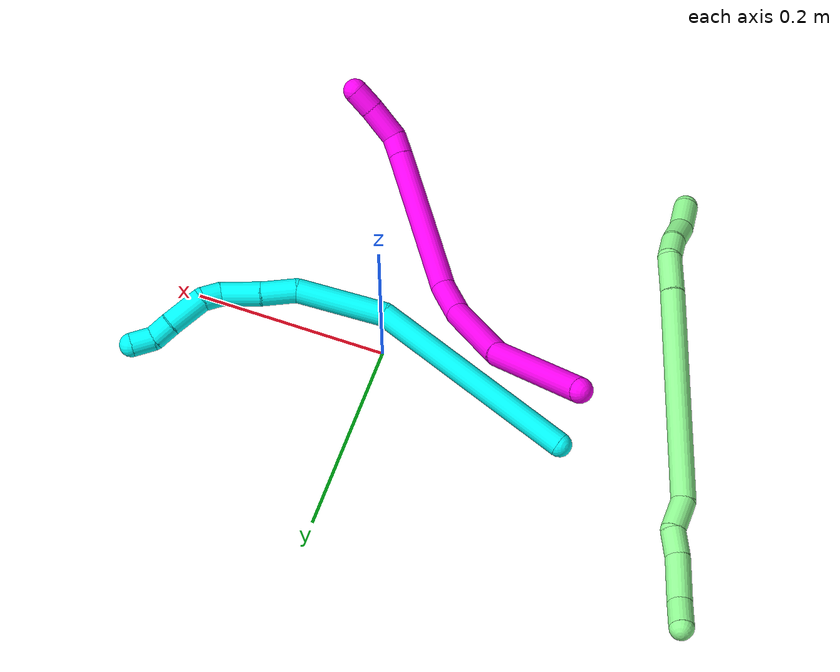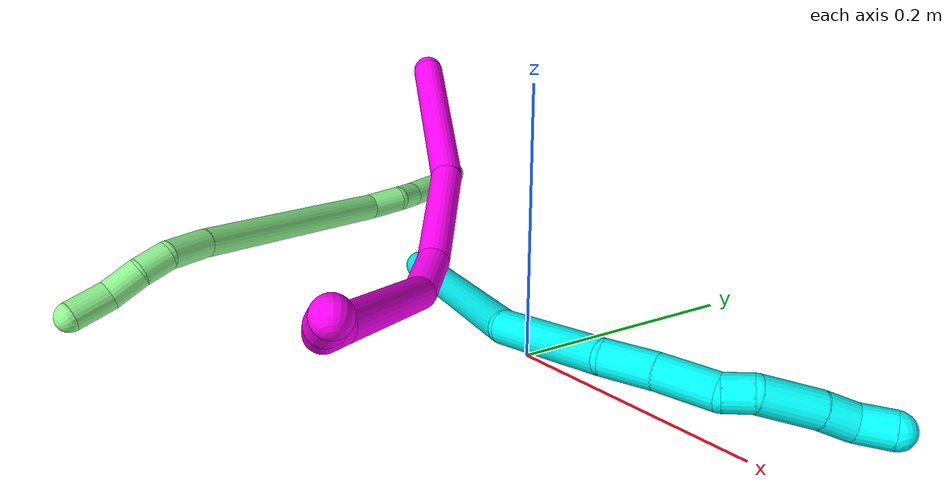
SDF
<sdf version="1.7">
 <world name="default">
  <model name="photoneo_s_sensor">
   <static>1</static>
   <pose>0 0 2 1.57079 1.57079 3.14159</pose>
   <link name="link">
    <inertial><mass>0.1</mass></inertial>
    <sensor name="sensor" type="depth">
     <update_rate>30</update_rate>
     <camera>
      <horizontal_fov>1.22</horizontal_fov>
      <image><width>1920</width><height>1200</height><format>B8G8R8</format></image>
      <clip><near>0.1</near><far>4</far></clip>
      <depth_camera><output>points</output></depth_camera>
     </camera>
     <plugin name="camera_plugin" filename="libgazebo_ros_depth_camera.so">
      <baseline>0.2</baseline>
      <alwaysOn>1</alwaysOn>
      <updateRate>0.0</updateRate>
      <cameraName>camera_ir</cameraName>
      <imageTopicName>/camera/color/image_raw</imageTopicName>
      <cameraInfoTopicName>/camera/color/camera_info</cameraInfoTopicName>
      <depthImageTopicName>/camera/depth/image_raw</depthImageTopicName>
      <depthImageCameraInfoTopicName>/camera/depth/camera_info</depthImageCameraInfoTopicName>
      <pointCloudTopicName>/camera/depth/points</pointCloudTopicName>
      <frameName>fr_optical</frameName>
      <pointCloudCutoff>0.1</pointCloudCutoff>
      <pointCloudCutoffMax>2.0</pointCloudCutoffMax>
      <distortionK1>0</distortionK1>
      <distortionK2>0</distortionK2>
      <distortionK3>0</distortionK3>
      <distortionT1>0</distortionT1>
      <distortionT2>0</distortionT2>
      <CxPrime>0</CxPrime>
      <Cx>0</Cx>
      <Cy>0</Cy>
      <focalLength>0</focalLength>
      <hackBaseline>0</hackBaseline>
     </plugin>
    </sensor>
   </link>
  </model>
  <model name="bin">
   <static>1</static>
   <link name="bottom">
    <collision name="collision-bottom">
     <pose>0 0 -0.01 0 -0 0</pose>
     <geometry><box><size>0.8 0.6 0.02</size></box></geometry>
     <surface>
      <friction><ode><mu>100</mu><mu2>100</mu2></ode></friction>
      <contact><collide_bitmask>65535</collide_bitmask></contact>
     </surface>
    </collision>
   </link>
   <link name="west_wall">
    <collision name="collision-west_wall">
     <pose>-0.41 0 0.1 0 -0 0</pose>
     <geometry><box><size>0.02 0.6 0.2</size></box></geometry>
     <surface>
      <friction><ode><mu>100</mu><mu2>100</mu2></ode></friction>
      <contact><collide_bitmask>65535</collide_bitmask></contact>
     </surface>
    </collision>
   </link>
   <link name="east_wall">
    <collision name="collision-east_wall">
     <pose>0.41 0 0.1 0 -0 0</pose>
     <geometry><box><size>0.02 0.6 0.2</size></box></geometry>
     <surface>
      <friction><ode><mu>100</mu><mu2>100</mu2></ode></friction>
      <contact><collide_bitmask>65535</collide_bitmask></contact>
     </surface>
    </collision>
   </link>
   <link name="south_wall">
    <collision name="collision-south_wall">
     <pose>0 -0.31 0.1 0 -0 0</pose>
     <geometry><box><size>0.8 0.02 0.2</size></box></geometry>
     <surface>
      <friction><ode><mu>100</mu><mu2>100</mu2></ode></friction>
      <contact><collide_bitmask>65535</collide_bitmask></contact>
     </surface>
    </collision>
   </link>
   <link name="north_wall">
    <collision name="collision-north_wall">
     <pose>0 0.31 0.1 0 -0 0</pose>
     <geometry><box><size>0.8 0.02 0.2</size></box></geometry>
     <surface>
      <friction><ode><mu>100</mu><mu2>100</mu2></ode></friction>
      <contact><collide_bitmask>65535</collide_bitmask></contact>
     </surface>
    </collision>
   </link>
  </model>
  <model name="3">
   <static>0</static>
   <link name="3">
    <collision name="collision-cylinder-e_1_1_4">
     <pose>0.060718 -0.030305 -0.088493 2.81165 0.575759 2.1172</pose>
     <geometry><cylinder><radius>0.0125</radius><length>0.223034</length></cylinder></geometry>
     <surface>
      <friction><ode><mu>1.16</mu><mu2>1.16</mu2><slip1>0</slip1><slip2>0</slip2></ode></friction>
      <contact><ode><kp>1e+06</kp><kd>1</kd><max_vel>0</max_vel><min_depth>0.001</min_depth></ode></contact>
     </surface>
    </collision>
    <visual name="visual-cylinder-e_1_1_4">
     <pose>0.060718 -0.030305 -0.088493 2.81165 0.575759 2.1172</pose>
     <geometry><cylinder><radius>0.0125</radius><length>0.223034</length></cylinder></geometry>
     <material><ambient>0.003922 1 0.996078 1</ambient></material>
    </visual>
    <collision name="collision-cylinder-e_2_4_5">
     <pose>0.152887 -0.056336 -0.210588 -3.01507 0.748348 -2.82172</pose>
     <geometry><cylinder><radius>0.0125</radius><length>0.092446</length></cylinder></geometry>
     <surface>
      <friction><ode><mu>1.16</mu><mu2>1.16</mu2><slip1>0</slip1><slip2>0</slip2></ode></friction>
      <contact><ode><kp>1e+06</kp><kd>1</kd><max_vel>0</max_vel><min_depth>0.001</min_depth></ode></contact>
     </surface>
    </collision>
    <visual name="visual-cylinder-e_2_4_5">
     <pose>0.152887 -0.056336 -0.210588 -3.01507 0.748348 -2.82172</pose>
     <geometry><cylinder><radius>0.0125</radius><length>0.092446</length></cylinder></geometry>
     <material><ambient>0.003922 1 0.996078 1</ambient></material>
    </visual>
    <collision name="collision-cylinder-e_3_5_6">
     <pose>0.196103 -0.043989 -0.255647 -2.52776 0.698287 -1.70899</pose>
     <geometry><cylinder><radius>0.0125</radius><length>0.036599</length></cylinder></geometry>
     <surface>
      <friction><ode><mu>1.16</mu><mu2>1.16</mu2><slip1>0</slip1><slip2>0</slip2></ode></friction>
      <contact><ode><kp>1e+06</kp><kd>1</kd><max_vel>0</max_vel><min_depth>0.001</min_depth></ode></contact>
     </surface>
    </collision>
    <visual name="visual-cylinder-e_3_5_6">
     <pose>0.196103 -0.043989 -0.255647 -2.52776 0.698287 -1.70899</pose>
     <geometry><cylinder><radius>0.0125</radius><length>0.036599</length></cylinder></geometry>
     <material><ambient>0.003922 1 0.996078 1</ambient></material>
    </visual>
    <collision name="collision-cylinder-e_4_6_7">
     <pose>0.220738 -0.028617 -0.281456 -2.67115 0.674369 -1.9423</pose>
     <geometry><cylinder><radius>0.0125</radius><length>0.041223</length></cylinder></geometry>
     <surface>
      <friction><ode><mu>1.16</mu><mu2>1.16</mu2><slip1>0</slip1><slip2>0</slip2></ode></friction>
      <contact><ode><kp>1e+06</kp><kd>1</kd><max_vel>0</max_vel><min_depth>0.001</min_depth></ode></contact>
     </surface>
    </collision>
    <visual name="visual-cylinder-e_4_6_7">
     <pose>0.220738 -0.028617 -0.281456 -2.67115 0.674369 -1.9423</pose>
     <geometry><cylinder><radius>0.0125</radius><length>0.041223</length></cylinder></geometry>
     <material><ambient>0.003922 1 0.996078 1</ambient></material>
    </visual>
    <collision name="collision-cylinder-e_5_7_8">
     <pose>0.240926 -0.015405 -0.299469 -2.12528 0.810694 -1.31296</pose>
     <geometry><cylinder><radius>0.0125</radius><length>0.020195</length></cylinder></geometry>
     <surface>
      <friction><ode><mu>1.16</mu><mu2>1.16</mu2><slip1>0</slip1><slip2>0</slip2></ode></friction>
      <contact><ode><kp>1e+06</kp><kd>1</kd><max_vel>0</max_vel><min_depth>0.001</min_depth></ode></contact>
     </surface>
    </collision>
    <visual name="visual-cylinder-e_5_7_8">
     <pose>0.240926 -0.015405 -0.299469 -2.12528 0.810694 -1.31296</pose>
     <geometry><cylinder><radius>0.0125</radius><length>0.020195</length></cylinder></geometry>
     <material><ambient>0.003922 1 0.996078 1</ambient></material>
    </visual>
    <collision name="collision-cylinder-e_6_8_9">
     <pose>0.256193 0.007893 -0.309852 -1.93968 0.403125 -0.579363</pose>
     <geometry><cylinder><radius>0.0125</radius><length>0.040522</length></cylinder></geometry>
     <surface>
      <friction><ode><mu>1.16</mu><mu2>1.16</mu2><slip1>0</slip1><slip2>0</slip2></ode></friction>
      <contact><ode><kp>1e+06</kp><kd>1</kd><max_vel>0</max_vel><min_depth>0.001</min_depth></ode></contact>
     </surface>
    </collision>
    <visual name="visual-cylinder-e_6_8_9">
     <pose>0.256193 0.007893 -0.309852 -1.93968 0.403125 -0.579363</pose>
     <geometry><cylinder><radius>0.0125</radius><length>0.040522</length></cylinder></geometry>
     <material><ambient>0.003922 1 0.996078 1</ambient></material>
    </visual>
    <collision name="collision-cylinder-e_7_9_10">
     <pose>0.267495 0.03511 -0.320878 -1.98351 0.302824 -0.45854</pose>
     <geometry><cylinder><radius>0.0125</radius><length>0.022495</length></cylinder></geometry>
     <surface>
      <friction><ode><mu>1.16</mu><mu2>1.16</mu2><slip1>0</slip1><slip2>0</slip2></ode></friction>
      <contact><ode><kp>1e+06</kp><kd>1</kd><max_vel>0</max_vel><min_depth>0.001</min_depth></ode></contact>
     </surface>
    </collision>
    <visual name="visual-cylinder-e_7_9_10">
     <pose>0.267495 0.03511 -0.320878 -1.98351 0.302824 -0.45854</pose>
     <geometry><cylinder><radius>0.0125</radius><length>0.022495</length></cylinder></geometry>
     <material><ambient>0.003922 1 0.996078 1</ambient></material>
    </visual>
    <collision name="collision-cylinder-e_8_10_2">
     <pose>0.278213 0.051981 -0.33103 -2.26403 0.677797 -1.28844</pose>
     <geometry><cylinder><radius>0.0125</radius><length>0.023487</length></cylinder></geometry>
     <surface>
      <friction><ode><mu>1.16</mu><mu2>1.16</mu2><slip1>0</slip1><slip2>0</slip2></ode></friction>
      <contact><ode><kp>1e+06</kp><kd>1</kd><max_vel>0</max_vel><min_depth>0.001</min_depth></ode></contact>
     </surface>
    </collision>
    <visual name="visual-cylinder-e_8_10_2">
     <pose>0.278213 0.051981 -0.33103 -2.26403 0.677797 -1.28844</pose>
     <geometry><cylinder><radius>0.0125</radius><length>0.023487</length></cylinder></geometry>
     <material><ambient>0.003922 1 0.996078 1</ambient></material>
    </visual>
    <collision name="collision-sphere-2">
     <pose>0.285577 0.059017 -0.336875 0 -0 0</pose>
     <geometry><sphere><radius>0.0125</radius></sphere></geometry>
     <surface>
      <friction><ode><mu>1.16</mu><mu2>1.16</mu2><slip1>0</slip1><slip2>0</slip2></ode></friction>
      <contact><ode><kp>1e+06</kp><kd>1</kd><max_vel>0</max_vel><min_depth>0.001</min_depth></ode></contact>
     </surface>
    </collision>
    <visual name="visual-sphere-2">
     <pose>0.285577 0.059017 -0.336875 0 -0 0</pose>
     <geometry><sphere><radius>0.0125</radius></sphere></geometry>
     <material><ambient>0.003922 1 0.996078 1</ambient></material>
    </visual>
    <collision name="collision-sphere-10">
     <pose>0.270849 0.044945 -0.325184 0 -0 0</pose>
     <geometry><sphere><radius>0.0125</radius></sphere></geometry>
     <surface>
      <friction><ode><mu>1.16</mu><mu2>1.16</mu2><slip1>0</slip1><slip2>0</slip2></ode></friction>
      <contact><ode><kp>1e+06</kp><kd>1</kd><max_vel>0</max_vel><min_depth>0.001</min_depth></ode></contact>
     </surface>
    </collision>
    <visual name="visual-sphere-10">
     <pose>0.270849 0.044945 -0.325184 0 -0 0</pose>
     <geometry><sphere><radius>0.0125</radius></sphere></geometry>
     <material><ambient>0.003922 1 0.996078 1</ambient></material>
    </visual>
    <collision name="collision-sphere-9">
     <pose>0.264141 0.025276 -0.316572 0 -0 0</pose>
     <geometry><sphere><radius>0.0125</radius></sphere></geometry>
     <surface>
      <friction><ode><mu>1.16</mu><mu2>1.16</mu2><slip1>0</slip1><slip2>0</slip2></ode></friction>
      <contact><ode><kp>1e+06</kp><kd>1</kd><max_vel>0</max_vel><min_depth>0.001</min_depth></ode></contact>
     </surface>
    </collision>
    <visual name="visual-sphere-9">
     <pose>0.264141 0.025276 -0.316572 0 -0 0</pose>
     <geometry><sphere><radius>0.0125</radius></sphere></geometry>
     <material><ambient>0.003922 1 0.996078 1</ambient></material>
    </visual>
    <collision name="collision-sphere-4">
     <pose>0.121436 -0.06061 -0.176986 0 -0 0</pose>
     <geometry><sphere><radius>0.0125</radius></sphere></geometry>
     <surface>
      <friction><ode><mu>1.16</mu><mu2>1.16</mu2><slip1>0</slip1><slip2>0</slip2></ode></friction>
      <contact><ode><kp>1e+06</kp><kd>1</kd><max_vel>0</max_vel><min_depth>0.001</min_depth></ode></contact>
     </surface>
    </collision>
    <visual name="visual-sphere-4">
     <pose>0.121436 -0.06061 -0.176986 0 -0 0</pose>
     <geometry><sphere><radius>0.0125</radius></sphere></geometry>
     <material><ambient>0.003922 1 0.996078 1</ambient></material>
    </visual>
    <collision name="collision-sphere-1">
     <geometry><sphere><radius>0.0125</radius></sphere></geometry>
     <surface>
      <friction><ode><mu>1.16</mu><mu2>1.16</mu2><slip1>0</slip1><slip2>0</slip2></ode></friction>
      <contact><ode><kp>1e+06</kp><kd>1</kd><max_vel>0</max_vel><min_depth>0.001</min_depth></ode></contact>
     </surface>
    </collision>
    <visual name="visual-sphere-1">
     <geometry><sphere><radius>0.0125</radius></sphere></geometry>
     <material><ambient>0.003922 1 0.996078 1</ambient></material>
    </visual>
    <collision name="collision-sphere-8">
     <pose>0.248245 -0.00949 -0.303132 0 -0 0</pose>
     <geometry><sphere><radius>0.0125</radius></sphere></geometry>
     <surface>
      <friction><ode><mu>1.16</mu><mu2>1.16</mu2><slip1>0</slip1><slip2>0</slip2></ode></friction>
      <contact><ode><kp>1e+06</kp><kd>1</kd><max_vel>0</max_vel><min_depth>0.001</min_depth></ode></contact>
     </surface>
    </collision>
    <visual name="visual-sphere-8">
     <pose>0.248245 -0.00949 -0.303132 0 -0 0</pose>
     <geometry><sphere><radius>0.0125</radius></sphere></geometry>
     <material><ambient>0.003922 1 0.996078 1</ambient></material>
    </visual>
    <collision name="collision-sphere-5">
     <pose>0.184338 -0.052062 -0.24419 0 -0 0</pose>
     <geometry><sphere><radius>0.0125</radius></sphere></geometry>
     <surface>
      <friction><ode><mu>1.16</mu><mu2>1.16</mu2><slip1>0</slip1><slip2>0</slip2></ode></friction>
      <contact><ode><kp>1e+06</kp><kd>1</kd><max_vel>0</max_vel><min_depth>0.001</min_depth></ode></contact>
     </surface>
    </collision>
    <visual name="visual-sphere-5">
     <pose>0.184338 -0.052062 -0.24419 0 -0 0</pose>
     <geometry><sphere><radius>0.0125</radius></sphere></geometry>
     <material><ambient>0.003922 1 0.996078 1</ambient></material>
    </visual>
    <collision name="collision-sphere-6">
     <pose>0.207868 -0.035915 -0.267105 0 -0 0</pose>
     <geometry><sphere><radius>0.0125</radius></sphere></geometry>
     <surface>
      <friction><ode><mu>1.16</mu><mu2>1.16</mu2><slip1>0</slip1><slip2>0</slip2></ode></friction>
      <contact><ode><kp>1e+06</kp><kd>1</kd><max_vel>0</max_vel><min_depth>0.001</min_depth></ode></contact>
     </surface>
    </collision>
    <visual name="visual-sphere-6">
     <pose>0.207868 -0.035915 -0.267105 0 -0 0</pose>
     <geometry><sphere><radius>0.0125</radius></sphere></geometry>
     <material><ambient>0.003922 1 0.996078 1</ambient></material>
    </visual>
    <collision name="collision-sphere-7">
     <pose>0.233608 -0.02132 -0.295806 0 -0 0</pose>
     <geometry><sphere><radius>0.0125</radius></sphere></geometry>
     <surface>
      <friction><ode><mu>1.16</mu><mu2>1.16</mu2><slip1>0</slip1><slip2>0</slip2></ode></friction>
      <contact><ode><kp>1e+06</kp><kd>1</kd><max_vel>0</max_vel><min_depth>0.001</min_depth></ode></contact>
     </surface>
    </collision>
    <visual name="visual-sphere-7">
     <pose>0.233608 -0.02132 -0.295806 0 -0 0</pose>
     <geometry><sphere><radius>0.0125</radius></sphere></geometry>
     <material><ambient>0.003922 1 0.996078 1</ambient></material>
    </visual>
    <inertial>
     <pose>0.143502 -0.025475 -0.18752 0 -0 0</pose>
     <mass>0.5</mass>
     <inertia>
      <ixx>0.000209</ixx>
      <ixy>0</ixy>
      <ixz>0</ixz>
      <iyy>0.001315</iyy>
      <iyz>0</iyz>
      <izz>-0.000363</izz>
     </inertia>
    </inertial>
   </link>
   <pose>-0.203324 0.042405 0.011485 -0.668118 -0.815249 0.463639</pose>
  </model>
  <model name="10">
   <static>0</static>
   <link name="10">
    <collision name="collision-cylinder-e_1_1_4">
     <pose>0.001151 0.000284 -0.065522 -3.13726 0.017563 -2.65785</pose>
     <geometry><cylinder><radius>0.0125</radius><length>0.131065</length></cylinder></geometry>
     <surface>
      <friction><ode><mu>1.16</mu><mu2>1.16</mu2><slip1>0</slip1><slip2>0</slip2></ode></friction>
      <contact><ode><kp>1e+06</kp><kd>1</kd><max_vel>0</max_vel><min_depth>0.001</min_depth></ode></contact>
     </surface>
    </collision>
    <visual name="visual-cylinder-e_1_1_4">
     <pose>0.001151 0.000284 -0.065522 -3.13726 0.017563 -2.65785</pose>
     <geometry><cylinder><radius>0.0125</radius><length>0.131065</length></cylinder></geometry>
     <material><ambient>1 0 0.964706 1</ambient></material>
    </visual>
    <collision name="collision-cylinder-e_2_4_5">
     <pose>0.004187 -0.010412 -0.176535 2.90476 0.040265 0.335299</pose>
     <geometry><cylinder><radius>0.0125</radius><length>0.093672</length></cylinder></geometry>
     <surface>
      <friction><ode><mu>1.16</mu><mu2>1.16</mu2><slip1>0</slip1><slip2>0</slip2></ode></friction>
      <contact><ode><kp>1e+06</kp><kd>1</kd><max_vel>0</max_vel><min_depth>0.001</min_depth></ode></contact>
     </surface>
    </collision>
    <visual name="visual-cylinder-e_2_4_5">
     <pose>0.004187 -0.010412 -0.176535 2.90476 0.040265 0.335299</pose>
     <geometry><cylinder><radius>0.0125</radius><length>0.093672</length></cylinder></geometry>
     <material><ambient>1 0 0.964706 1</ambient></material>
    </visual>
    <collision name="collision-cylinder-e_3_5_6">
     <pose>0.011076 -0.029305 -0.240924 2.74508 0.239521 1.07937</pose>
     <geometry><cylinder><radius>0.0125</radius><length>0.042178</length></cylinder></geometry>
     <surface>
      <friction><ode><mu>1.16</mu><mu2>1.16</mu2><slip1>0</slip1><slip2>0</slip2></ode></friction>
      <contact><ode><kp>1e+06</kp><kd>1</kd><max_vel>0</max_vel><min_depth>0.001</min_depth></ode></contact>
     </surface>
    </collision>
    <visual name="visual-cylinder-e_3_5_6">
     <pose>0.011076 -0.029305 -0.240924 2.74508 0.239521 1.07937</pose>
     <geometry><cylinder><radius>0.0125</radius><length>0.042178</length></cylinder></geometry>
     <material><ambient>1 0 0.964706 1</ambient></material>
    </visual>
    <collision name="collision-cylinder-e_4_6_7">
     <pose>0.061836 -0.073461 -0.306151 2.47772 0.661116 1.56632</pose>
     <geometry><cylinder><radius>0.0125</radius><length>0.149047</length></cylinder></geometry>
     <surface>
      <friction><ode><mu>1.16</mu><mu2>1.16</mu2><slip1>0</slip1><slip2>0</slip2></ode></friction>
      <contact><ode><kp>1e+06</kp><kd>1</kd><max_vel>0</max_vel><min_depth>0.001</min_depth></ode></contact>
     </surface>
    </collision>
    <visual name="visual-cylinder-e_4_6_7">
     <pose>0.061836 -0.073461 -0.306151 2.47772 0.661116 1.56632</pose>
     <geometry><cylinder><radius>0.0125</radius><length>0.149047</length></cylinder></geometry>
     <material><ambient>1 0 0.964706 1</ambient></material>
    </visual>
    <collision name="collision-cylinder-e_5_7_8">
     <pose>0.114544 -0.114869 -0.359408 2.50106 0.677398 1.63099</pose>
     <geometry><cylinder><radius>0.0125</radius><length>0.022179</length></cylinder></geometry>
     <surface>
      <friction><ode><mu>1.16</mu><mu2>1.16</mu2><slip1>0</slip1><slip2>0</slip2></ode></friction>
      <contact><ode><kp>1e+06</kp><kd>1</kd><max_vel>0</max_vel><min_depth>0.001</min_depth></ode></contact>
     </surface>
    </collision>
    <visual name="visual-cylinder-e_5_7_8">
     <pose>0.114544 -0.114869 -0.359408 2.50106 0.677398 1.63099</pose>
     <geometry><cylinder><radius>0.0125</radius><length>0.022179</length></cylinder></geometry>
     <material><ambient>1 0 0.964706 1</ambient></material>
    </visual>
    <collision name="collision-cylinder-e_6_8_9">
     <pose>0.137724 -0.121218 -0.375162 3.0082 1.06895 2.91686</pose>
     <geometry><cylinder><radius>0.0125</radius><length>0.037025</length></cylinder></geometry>
     <surface>
      <friction><ode><mu>1.16</mu><mu2>1.16</mu2><slip1>0</slip1><slip2>0</slip2></ode></friction>
      <contact><ode><kp>1e+06</kp><kd>1</kd><max_vel>0</max_vel><min_depth>0.001</min_depth></ode></contact>
     </surface>
    </collision>
    <visual name="visual-cylinder-e_6_8_9">
     <pose>0.137724 -0.121218 -0.375162 3.0082 1.06895 2.91686</pose>
     <geometry><cylinder><radius>0.0125</radius><length>0.037025</length></cylinder></geometry>
     <material><ambient>1 0 0.964706 1</ambient></material>
    </visual>
    <collision name="collision-cylinder-e_7_9_2">
     <pose>0.165239 -0.122049 -0.389156 -3.0734 1.14047 -3.03532</pose>
     <geometry><cylinder><radius>0.0125</radius><length>0.024834</length></cylinder></geometry>
     <surface>
      <friction><ode><mu>1.16</mu><mu2>1.16</mu2><slip1>0</slip1><slip2>0</slip2></ode></friction>
      <contact><ode><kp>1e+06</kp><kd>1</kd><max_vel>0</max_vel><min_depth>0.001</min_depth></ode></contact>
     </surface>
    </collision>
    <visual name="visual-cylinder-e_7_9_2">
     <pose>0.165239 -0.122049 -0.389156 -3.0734 1.14047 -3.03532</pose>
     <geometry><cylinder><radius>0.0125</radius><length>0.024834</length></cylinder></geometry>
     <material><ambient>1 0 0.964706 1</ambient></material>
    </visual>
    <collision name="collision-sphere-2">
     <pose>0.176524 -0.121696 -0.394324 0 -0 0</pose>
     <geometry><sphere><radius>0.0125</radius></sphere></geometry>
     <surface>
      <friction><ode><mu>1.16</mu><mu2>1.16</mu2><slip1>0</slip1><slip2>0</slip2></ode></friction>
      <contact><ode><kp>1e+06</kp><kd>1</kd><max_vel>0</max_vel><min_depth>0.001</min_depth></ode></contact>
     </surface>
    </collision>
    <visual name="visual-sphere-2">
     <pose>0.176524 -0.121696 -0.394324 0 -0 0</pose>
     <geometry><sphere><radius>0.0125</radius></sphere></geometry>
     <material><ambient>1 0 0.964706 1</ambient></material>
    </visual>
    <collision name="collision-sphere-9">
     <pose>0.153954 -0.122402 -0.383988 0 -0 0</pose>
     <geometry><sphere><radius>0.0125</radius></sphere></geometry>
     <surface>
      <friction><ode><mu>1.16</mu><mu2>1.16</mu2><slip1>0</slip1><slip2>0</slip2></ode></friction>
      <contact><ode><kp>1e+06</kp><kd>1</kd><max_vel>0</max_vel><min_depth>0.001</min_depth></ode></contact>
     </surface>
    </collision>
    <visual name="visual-sphere-9">
     <pose>0.153954 -0.122402 -0.383988 0 -0 0</pose>
     <geometry><sphere><radius>0.0125</radius></sphere></geometry>
     <material><ambient>1 0 0.964706 1</ambient></material>
    </visual>
    <collision name="collision-sphere-4">
     <pose>0.002302 0.000568 -0.131044 0 -0 0</pose>
     <geometry><sphere><radius>0.0125</radius></sphere></geometry>
     <surface>
      <friction><ode><mu>1.16</mu><mu2>1.16</mu2><slip1>0</slip1><slip2>0</slip2></ode></friction>
      <contact><ode><kp>1e+06</kp><kd>1</kd><max_vel>0</max_vel><min_depth>0.001</min_depth></ode></contact>
     </surface>
    </collision>
    <visual name="visual-sphere-4">
     <pose>0.002302 0.000568 -0.131044 0 -0 0</pose>
     <geometry><sphere><radius>0.0125</radius></sphere></geometry>
     <material><ambient>1 0 0.964706 1</ambient></material>
    </visual>
    <collision name="collision-sphere-1">
     <geometry><sphere><radius>0.0125</radius></sphere></geometry>
     <surface>
      <friction><ode><mu>1.16</mu><mu2>1.16</mu2><slip1>0</slip1><slip2>0</slip2></ode></friction>
      <contact><ode><kp>1e+06</kp><kd>1</kd><max_vel>0</max_vel><min_depth>0.001</min_depth></ode></contact>
     </surface>
    </collision>
    <visual name="visual-sphere-1">
     <geometry><sphere><radius>0.0125</radius></sphere></geometry>
     <material><ambient>1 0 0.964706 1</ambient></material>
    </visual>
    <collision name="collision-sphere-8">
     <pose>0.121494 -0.120033 -0.366336 0 -0 0</pose>
     <geometry><sphere><radius>0.0125</radius></sphere></geometry>
     <surface>
      <friction><ode><mu>1.16</mu><mu2>1.16</mu2><slip1>0</slip1><slip2>0</slip2></ode></friction>
      <contact><ode><kp>1e+06</kp><kd>1</kd><max_vel>0</max_vel><min_depth>0.001</min_depth></ode></contact>
     </surface>
    </collision>
    <visual name="visual-sphere-8">
     <pose>0.121494 -0.120033 -0.366336 0 -0 0</pose>
     <geometry><sphere><radius>0.0125</radius></sphere></geometry>
     <material><ambient>1 0 0.964706 1</ambient></material>
    </visual>
    <collision name="collision-sphere-5">
     <pose>0.006072 -0.021392 -0.222027 0 -0 0</pose>
     <geometry><sphere><radius>0.0125</radius></sphere></geometry>
     <surface>
      <friction><ode><mu>1.16</mu><mu2>1.16</mu2><slip1>0</slip1><slip2>0</slip2></ode></friction>
      <contact><ode><kp>1e+06</kp><kd>1</kd><max_vel>0</max_vel><min_depth>0.001</min_depth></ode></contact>
     </surface>
    </collision>
    <visual name="visual-sphere-5">
     <pose>0.006072 -0.021392 -0.222027 0 -0 0</pose>
     <geometry><sphere><radius>0.0125</radius></sphere></geometry>
     <material><ambient>1 0 0.964706 1</ambient></material>
    </visual>
    <collision name="collision-sphere-6">
     <pose>0.016079 -0.037217 -0.259822 0 -0 0</pose>
     <geometry><sphere><radius>0.0125</radius></sphere></geometry>
     <surface>
      <friction><ode><mu>1.16</mu><mu2>1.16</mu2><slip1>0</slip1><slip2>0</slip2></ode></friction>
      <contact><ode><kp>1e+06</kp><kd>1</kd><max_vel>0</max_vel><min_depth>0.001</min_depth></ode></contact>
     </surface>
    </collision>
    <visual name="visual-sphere-6">
     <pose>0.016079 -0.037217 -0.259822 0 -0 0</pose>
     <geometry><sphere><radius>0.0125</radius></sphere></geometry>
     <material><ambient>1 0 0.964706 1</ambient></material>
    </visual>
    <collision name="collision-sphere-7">
     <pose>0.107593 -0.109705 -0.352479 0 -0 0</pose>
     <geometry><sphere><radius>0.0125</radius></sphere></geometry>
     <surface>
      <friction><ode><mu>1.16</mu><mu2>1.16</mu2><slip1>0</slip1><slip2>0</slip2></ode></friction>
      <contact><ode><kp>1e+06</kp><kd>1</kd><max_vel>0</max_vel><min_depth>0.001</min_depth></ode></contact>
     </surface>
    </collision>
    <visual name="visual-sphere-7">
     <pose>0.107593 -0.109705 -0.352479 0 -0 0</pose>
     <geometry><sphere><radius>0.0125</radius></sphere></geometry>
     <material><ambient>1 0 0.964706 1</ambient></material>
    </visual>
    <inertial>
     <pose>0.04394 -0.04638 -0.224885 0 -0 0</pose>
     <mass>0.5</mass>
     <inertia>
      <ixx>7.7e-05</ixx>
      <ixy>0</ixy>
      <ixz>0</ixz>
      <iyy>0.000372</iyy>
      <iyz>0</iyz>
      <izz>-6.3e-05</izz>
     </inertia>
    </inertial>
   </link>
   <pose>-0.224088 0.065357 0.184571 -0.114191 -0.949066 -0.328483</pose>
  </model>
  <model name="13">
   <static>0</static>
   <link name="13">
    <collision name="collision-cylinder-e_1_1_4">
     <pose>0.003112 -0.002617 -0.013814 2.95435 0.217862 1.7227</pose>
     <geometry><cylinder><radius>0.0125</radius><length>0.0288</length></cylinder></geometry>
     <surface>
      <friction><ode><mu>1.16</mu><mu2>1.16</mu2><slip1>0</slip1><slip2>0</slip2></ode></friction>
      <contact><ode><kp>1e+06</kp><kd>1</kd><max_vel>0</max_vel><min_depth>0.001</min_depth></ode></contact>
     </surface>
    </collision>
    <visual name="visual-cylinder-e_1_1_4">
     <pose>0.003112 -0.002617 -0.013814 2.95435 0.217862 1.7227</pose>
     <geometry><cylinder><radius>0.0125</radius><length>0.0288</length></cylinder></geometry>
     <material><ambient>0.564706 0.984314 0.572549 1</ambient></material>
    </visual>
    <collision name="collision-cylinder-e_2_4_5">
     <pose>0.012355 -0.014529 -0.049489 2.7396 0.25256 1.11446</pose>
     <geometry><cylinder><radius>0.0125</radius><length>0.049067</length></cylinder></geometry>
     <surface>
      <friction><ode><mu>1.16</mu><mu2>1.16</mu2><slip1>0</slip1><slip2>0</slip2></ode></friction>
      <contact><ode><kp>1e+06</kp><kd>1</kd><max_vel>0</max_vel><min_depth>0.001</min_depth></ode></contact>
     </surface>
    </collision>
    <visual name="visual-cylinder-e_2_4_5">
     <pose>0.012355 -0.014529 -0.049489 2.7396 0.25256 1.11446</pose>
     <geometry><cylinder><radius>0.0125</radius><length>0.049067</length></cylinder></geometry>
     <material><ambient>0.564706 0.984314 0.572549 1</ambient></material>
    </visual>
    <collision name="collision-cylinder-e_3_5_6">
     <pose>0.023956 -0.029837 -0.082858 2.66001 0.398707 1.37696</pose>
     <geometry><cylinder><radius>0.0125</radius><length>0.028179</length></cylinder></geometry>
     <surface>
      <friction><ode><mu>1.16</mu><mu2>1.16</mu2><slip1>0</slip1><slip2>0</slip2></ode></friction>
      <contact><ode><kp>1e+06</kp><kd>1</kd><max_vel>0</max_vel><min_depth>0.001</min_depth></ode></contact>
     </surface>
    </collision>
    <visual name="visual-cylinder-e_3_5_6">
     <pose>0.023956 -0.029837 -0.082858 2.66001 0.398707 1.37696</pose>
     <geometry><cylinder><radius>0.0125</radius><length>0.028179</length></cylinder></geometry>
     <material><ambient>0.564706 0.984314 0.572549 1</ambient></material>
    </visual>
    <collision name="collision-cylinder-e_4_6_7">
     <pose>0.027742 -0.042486 -0.110414 2.74957 -0.096667 -0.477903</pose>
     <geometry><cylinder><radius>0.0125</radius><length>0.034896</length></cylinder></geometry>
     <surface>
      <friction><ode><mu>1.16</mu><mu2>1.16</mu2><slip1>0</slip1><slip2>0</slip2></ode></friction>
      <contact><ode><kp>1e+06</kp><kd>1</kd><max_vel>0</max_vel><min_depth>0.001</min_depth></ode></contact>
     </surface>
    </collision>
    <visual name="visual-cylinder-e_4_6_7">
     <pose>0.027742 -0.042486 -0.110414 2.74957 -0.096667 -0.477903</pose>
     <geometry><cylinder><radius>0.0125</radius><length>0.034896</length></cylinder></geometry>
     <material><ambient>0.564706 0.984314 0.572549 1</ambient></material>
    </visual>
    <collision name="collision-cylinder-e_5_7_8">
     <pose>0.057625 -0.101851 -0.221286 2.63409 0.283135 1.00499</pose>
     <geometry><cylinder><radius>0.0125</radius><length>0.225992</length></cylinder></geometry>
     <surface>
      <friction><ode><mu>1.16</mu><mu2>1.16</mu2><slip1>0</slip1><slip2>0</slip2></ode></friction>
      <contact><ode><kp>1e+06</kp><kd>1</kd><max_vel>0</max_vel><min_depth>0.001</min_depth></ode></contact>
     </surface>
    </collision>
    <visual name="visual-cylinder-e_5_7_8">
     <pose>0.057625 -0.101851 -0.221286 2.63409 0.283135 1.00499</pose>
     <geometry><cylinder><radius>0.0125</radius><length>0.225992</length></cylinder></geometry>
     <material><ambient>0.564706 0.984314 0.572549 1</ambient></material>
    </visual>
    <collision name="collision-cylinder-e_6_8_9">
     <pose>0.095193 -0.162898 -0.33438 2.71437 0.290451 1.18644</pose>
     <geometry><cylinder><radius>0.0125</radius><length>0.041908</length></cylinder></geometry>
     <surface>
      <friction><ode><mu>1.16</mu><mu2>1.16</mu2><slip1>0</slip1><slip2>0</slip2></ode></friction>
      <contact><ode><kp>1e+06</kp><kd>1</kd><max_vel>0</max_vel><min_depth>0.001</min_depth></ode></contact>
     </surface>
    </collision>
    <visual name="visual-cylinder-e_6_8_9">
     <pose>0.095193 -0.162898 -0.33438 2.71437 0.290451 1.18644</pose>
     <geometry><cylinder><radius>0.0125</radius><length>0.041908</length></cylinder></geometry>
     <material><ambient>0.564706 0.984314 0.572549 1</ambient></material>
    </visual>
    <collision name="collision-cylinder-e_7_9_10">
     <pose>0.101125 -0.173057 -0.365937 3.00398 -0.005135 -0.074471</pose>
     <geometry><cylinder><radius>0.0125</radius><length>0.026826</length></cylinder></geometry>
     <surface>
      <friction><ode><mu>1.16</mu><mu2>1.16</mu2><slip1>0</slip1><slip2>0</slip2></ode></friction>
      <contact><ode><kp>1e+06</kp><kd>1</kd><max_vel>0</max_vel><min_depth>0.001</min_depth></ode></contact>
     </surface>
    </collision>
    <visual name="visual-cylinder-e_7_9_10">
     <pose>0.101125 -0.173057 -0.365937 3.00398 -0.005135 -0.074471</pose>
     <geometry><cylinder><radius>0.0125</radius><length>0.026826</length></cylinder></geometry>
     <material><ambient>0.564706 0.984314 0.572549 1</ambient></material>
    </visual>
    <collision name="collision-cylinder-e_8_10_11">
     <pose>0.098318 -0.174576 -0.393891 -3.11975 -0.184491 2.90654</pose>
     <geometry><cylinder><radius>0.0125</radius><length>0.02985</length></cylinder></geometry>
     <surface>
      <friction><ode><mu>1.16</mu><mu2>1.16</mu2><slip1>0</slip1><slip2>0</slip2></ode></friction>
      <contact><ode><kp>1e+06</kp><kd>1</kd><max_vel>0</max_vel><min_depth>0.001</min_depth></ode></contact>
     </surface>
    </collision>
    <visual name="visual-cylinder-e_8_10_11">
     <pose>0.098318 -0.174576 -0.393891 -3.11975 -0.184491 2.90654</pose>
     <geometry><cylinder><radius>0.0125</radius><length>0.02985</length></cylinder></geometry>
     <material><ambient>0.564706 0.984314 0.572549 1</ambient></material>
    </visual>
    <collision name="collision-cylinder-e_9_11_2">
     <pose>0.095662 -0.177486 -0.425495 2.95309 0.004741 0.050142</pose>
     <geometry><cylinder><radius>0.0125</radius><length>0.034483</length></cylinder></geometry>
     <surface>
      <friction><ode><mu>1.16</mu><mu2>1.16</mu2><slip1>0</slip1><slip2>0</slip2></ode></friction>
      <contact><ode><kp>1e+06</kp><kd>1</kd><max_vel>0</max_vel><min_depth>0.001</min_depth></ode></contact>
     </surface>
    </collision>
    <visual name="visual-cylinder-e_9_11_2">
     <pose>0.095662 -0.177486 -0.425495 2.95309 0.004741 0.050142</pose>
     <geometry><cylinder><radius>0.0125</radius><length>0.034483</length></cylinder></geometry>
     <material><ambient>0.564706 0.984314 0.572549 1</ambient></material>
    </visual>
    <collision name="collision-sphere-2">
     <pose>0.095744 -0.180717 -0.442431 0 -0 0</pose>
     <geometry><sphere><radius>0.0125</radius></sphere></geometry>
     <surface>
      <friction><ode><mu>1.16</mu><mu2>1.16</mu2><slip1>0</slip1><slip2>0</slip2></ode></friction>
      <contact><ode><kp>1e+06</kp><kd>1</kd><max_vel>0</max_vel><min_depth>0.001</min_depth></ode></contact>
     </surface>
    </collision>
    <visual name="visual-sphere-2">
     <pose>0.095744 -0.180717 -0.442431 0 -0 0</pose>
     <geometry><sphere><radius>0.0125</radius></sphere></geometry>
     <material><ambient>0.564706 0.984314 0.572549 1</ambient></material>
    </visual>
    <collision name="collision-sphere-11">
     <pose>0.09558 -0.174256 -0.408559 0 -0 0</pose>
     <geometry><sphere><radius>0.0125</radius></sphere></geometry>
     <surface>
      <friction><ode><mu>1.16</mu><mu2>1.16</mu2><slip1>0</slip1><slip2>0</slip2></ode></friction>
      <contact><ode><kp>1e+06</kp><kd>1</kd><max_vel>0</max_vel><min_depth>0.001</min_depth></ode></contact>
     </surface>
    </collision>
    <visual name="visual-sphere-11">
     <pose>0.09558 -0.174256 -0.408559 0 -0 0</pose>
     <geometry><sphere><radius>0.0125</radius></sphere></geometry>
     <material><ambient>0.564706 0.984314 0.572549 1</ambient></material>
    </visual>
    <collision name="collision-sphere-10">
     <pose>0.101056 -0.174896 -0.379223 0 -0 0</pose>
     <geometry><sphere><radius>0.0125</radius></sphere></geometry>
     <surface>
      <friction><ode><mu>1.16</mu><mu2>1.16</mu2><slip1>0</slip1><slip2>0</slip2></ode></friction>
      <contact><ode><kp>1e+06</kp><kd>1</kd><max_vel>0</max_vel><min_depth>0.001</min_depth></ode></contact>
     </surface>
    </collision>
    <visual name="visual-sphere-10">
     <pose>0.101056 -0.174896 -0.379223 0 -0 0</pose>
     <geometry><sphere><radius>0.0125</radius></sphere></geometry>
     <material><ambient>0.564706 0.984314 0.572549 1</ambient></material>
    </visual>
    <collision name="collision-sphere-9">
     <pose>0.101194 -0.171217 -0.352651 0 -0 0</pose>
     <geometry><sphere><radius>0.0125</radius></sphere></geometry>
     <surface>
      <friction><ode><mu>1.16</mu><mu2>1.16</mu2><slip1>0</slip1><slip2>0</slip2></ode></friction>
      <contact><ode><kp>1e+06</kp><kd>1</kd><max_vel>0</max_vel><min_depth>0.001</min_depth></ode></contact>
     </surface>
    </collision>
    <visual name="visual-sphere-9">
     <pose>0.101194 -0.171217 -0.352651 0 -0 0</pose>
     <geometry><sphere><radius>0.0125</radius></sphere></geometry>
     <material><ambient>0.564706 0.984314 0.572549 1</ambient></material>
    </visual>
    <collision name="collision-sphere-4">
     <pose>0.006225 -0.005234 -0.027627 0 -0 0</pose>
     <geometry><sphere><radius>0.0125</radius></sphere></geometry>
     <surface>
      <friction><ode><mu>1.16</mu><mu2>1.16</mu2><slip1>0</slip1><slip2>0</slip2></ode></friction>
      <contact><ode><kp>1e+06</kp><kd>1</kd><max_vel>0</max_vel><min_depth>0.001</min_depth></ode></contact>
     </surface>
    </collision>
    <visual name="visual-sphere-4">
     <pose>0.006225 -0.005234 -0.027627 0 -0 0</pose>
     <geometry><sphere><radius>0.0125</radius></sphere></geometry>
     <material><ambient>0.564706 0.984314 0.572549 1</ambient></material>
    </visual>
    <collision name="collision-sphere-1">
     <geometry><sphere><radius>0.0125</radius></sphere></geometry>
     <surface>
      <friction><ode><mu>1.16</mu><mu2>1.16</mu2><slip1>0</slip1><slip2>0</slip2></ode></friction>
      <contact><ode><kp>1e+06</kp><kd>1</kd><max_vel>0</max_vel><min_depth>0.001</min_depth></ode></contact>
     </surface>
    </collision>
    <visual name="visual-sphere-1">
     <geometry><sphere><radius>0.0125</radius></sphere></geometry>
     <material><ambient>0.564706 0.984314 0.572549 1</ambient></material>
    </visual>
    <collision name="collision-sphere-8">
     <pose>0.089192 -0.15458 -0.316108 0 -0 0</pose>
     <geometry><sphere><radius>0.0125</radius></sphere></geometry>
     <surface>
      <friction><ode><mu>1.16</mu><mu2>1.16</mu2><slip1>0</slip1><slip2>0</slip2></ode></friction>
      <contact><ode><kp>1e+06</kp><kd>1</kd><max_vel>0</max_vel><min_depth>0.001</min_depth></ode></contact>
     </surface>
    </collision>
    <visual name="visual-sphere-8">
     <pose>0.089192 -0.15458 -0.316108 0 -0 0</pose>
     <geometry><sphere><radius>0.0125</radius></sphere></geometry>
     <material><ambient>0.564706 0.984314 0.572549 1</ambient></material>
    </visual>
    <collision name="collision-sphere-5">
     <pose>0.018486 -0.023823 -0.07135 0 -0 0</pose>
     <geometry><sphere><radius>0.0125</radius></sphere></geometry>
     <surface>
      <friction><ode><mu>1.16</mu><mu2>1.16</mu2><slip1>0</slip1><slip2>0</slip2></ode></friction>
      <contact><ode><kp>1e+06</kp><kd>1</kd><max_vel>0</max_vel><min_depth>0.001</min_depth></ode></contact>
     </surface>
    </collision>
    <visual name="visual-sphere-5">
     <pose>0.018486 -0.023823 -0.07135 0 -0 0</pose>
     <geometry><sphere><radius>0.0125</radius></sphere></geometry>
     <material><ambient>0.564706 0.984314 0.572549 1</ambient></material>
    </visual>
    <collision name="collision-sphere-6">
     <pose>0.029426 -0.035851 -0.094365 0 -0 0</pose>
     <geometry><sphere><radius>0.0125</radius></sphere></geometry>
     <surface>
      <friction><ode><mu>1.16</mu><mu2>1.16</mu2><slip1>0</slip1><slip2>0</slip2></ode></friction>
      <contact><ode><kp>1e+06</kp><kd>1</kd><max_vel>0</max_vel><min_depth>0.001</min_depth></ode></contact>
     </surface>
    </collision>
    <visual name="visual-sphere-6">
     <pose>0.029426 -0.035851 -0.094365 0 -0 0</pose>
     <geometry><sphere><radius>0.0125</radius></sphere></geometry>
     <material><ambient>0.564706 0.984314 0.572549 1</ambient></material>
    </visual>
    <collision name="collision-sphere-7">
     <pose>0.026058 -0.049121 -0.126464 0 -0 0</pose>
     <geometry><sphere><radius>0.0125</radius></sphere></geometry>
     <surface>
      <friction><ode><mu>1.16</mu><mu2>1.16</mu2><slip1>0</slip1><slip2>0</slip2></ode></friction>
      <contact><ode><kp>1e+06</kp><kd>1</kd><max_vel>0</max_vel><min_depth>0.001</min_depth></ode></contact>
     </surface>
    </collision>
    <visual name="visual-sphere-7">
     <pose>0.026058 -0.049121 -0.126464 0 -0 0</pose>
     <geometry><sphere><radius>0.0125</radius></sphere></geometry>
     <material><ambient>0.564706 0.984314 0.572549 1</ambient></material>
    </visual>
    <inertial>
     <pose>0.056595 -0.097859 -0.218565 0 -0 0</pose>
     <mass>0.5</mass>
     <inertia>
      <ixx>0.001332</ixx>
      <ixy>0</ixy>
      <ixz>0</ixz>
      <iyy>0.000438</iyy>
      <iyz>0</iyz>
      <izz>0.000154</izz>
     </inertia>
    </inertial>
   </link>
   <pose>-0.377846 0.203498 0.047223 -1.07955 -0.147867 0.077145</pose>
  </model>
 </world>
</sdf>
